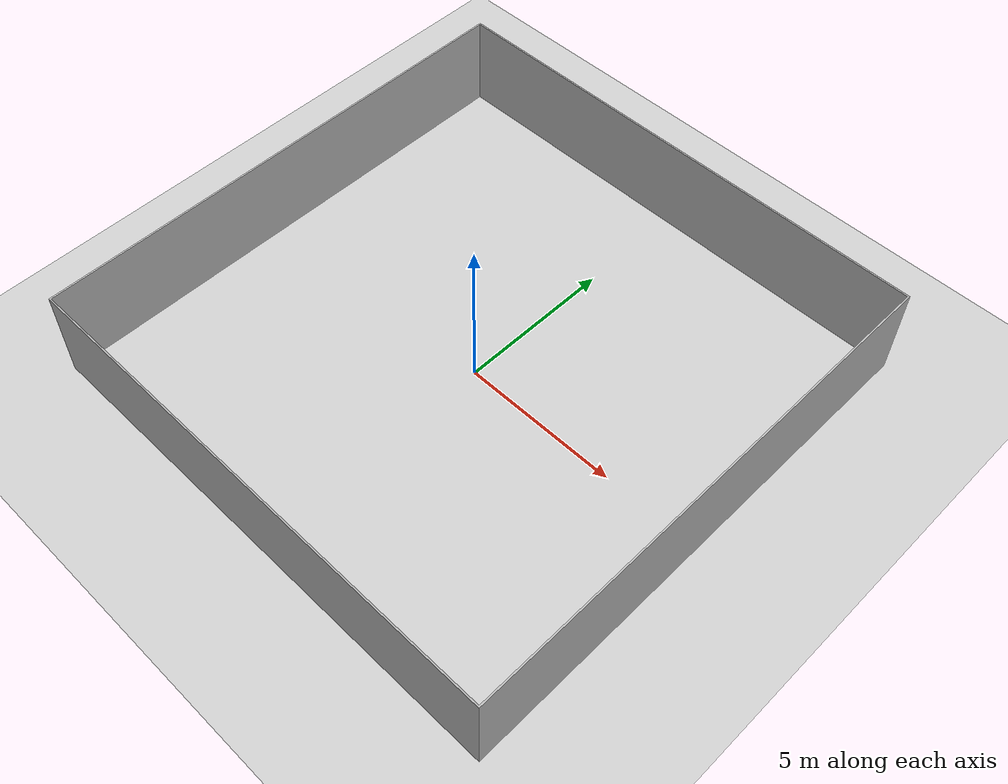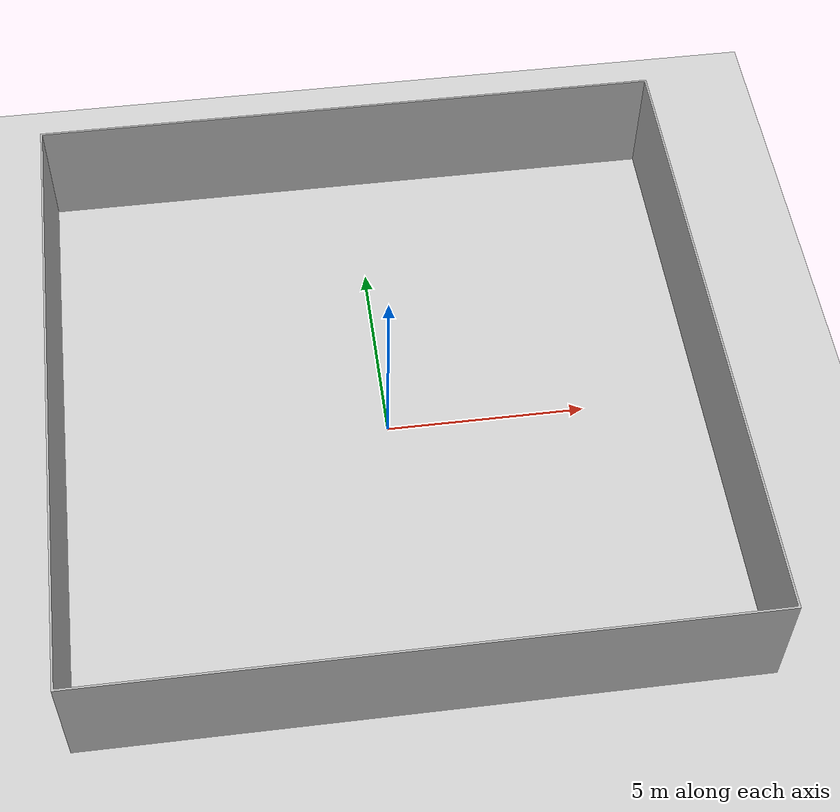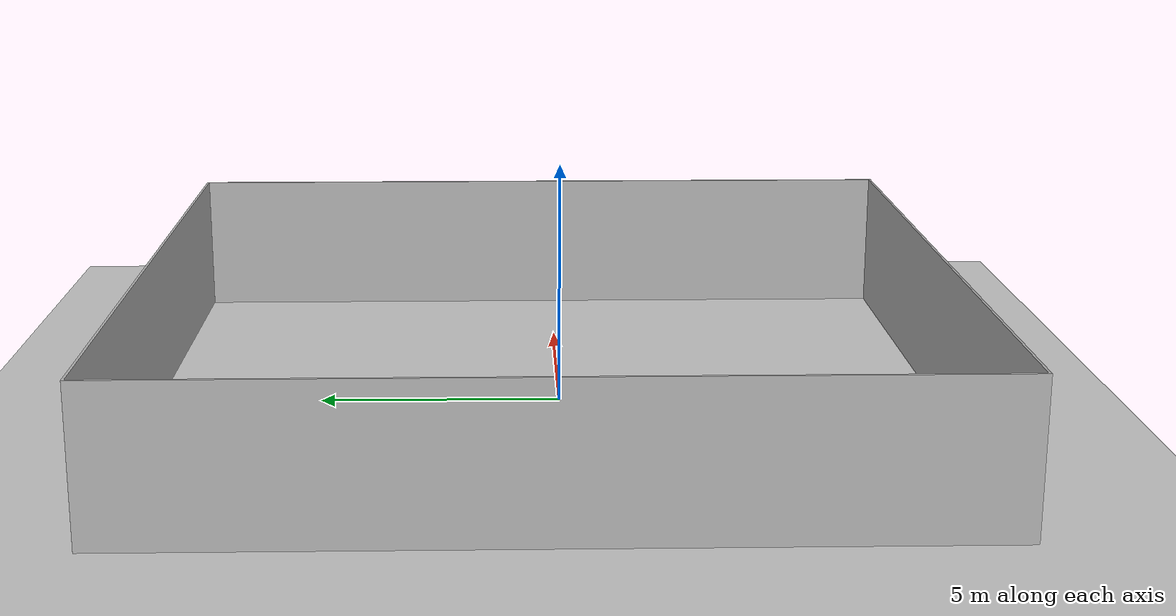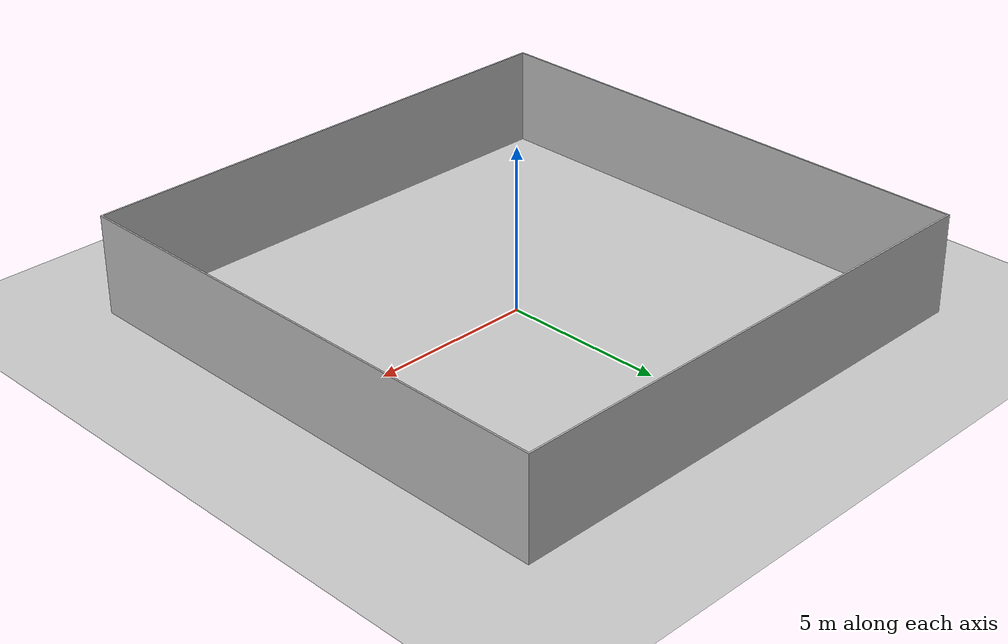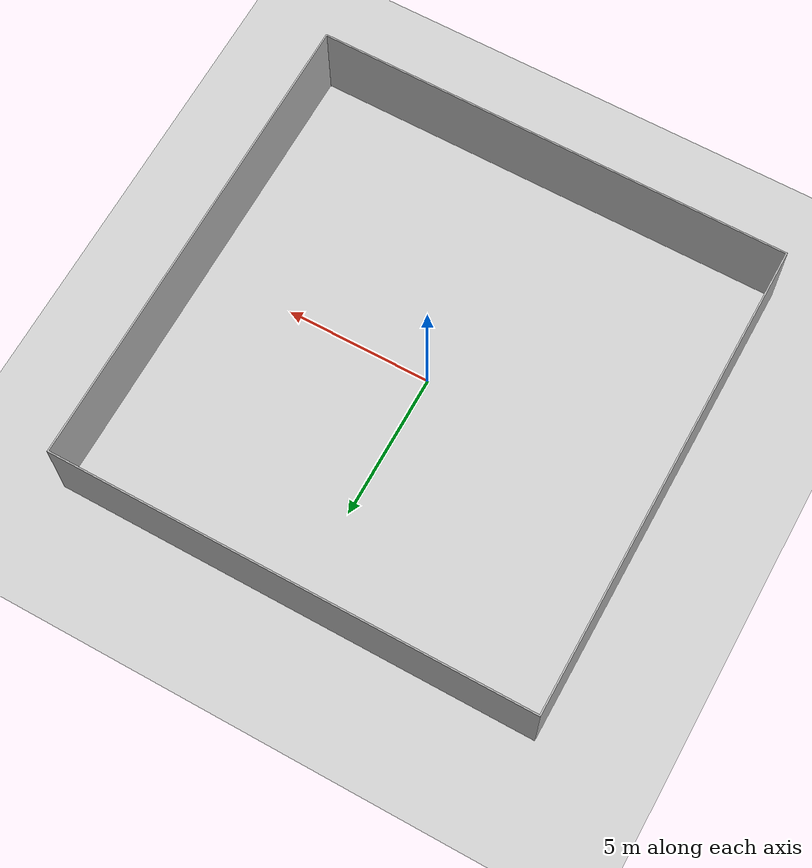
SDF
<?xml version="1.0"?>
<sdf version="1.4">
  <world name="default">
    <include>
      <uri>model://ground_plane</uri>
    </include>
    <include>
      <uri>model://sun</uri>
    </include>
    <model name="empty">
      <pose>-1.0 0.4 0  0 0 0</pose>
      <static>true</static>
      <link name="body">
        <visual name="visual">
          <geometry>
            <mesh><uri>model://empty.stl</uri><scale>35 35 35</scale></mesh>
          </geometry>
        </visual>
        <collision name="visual">
          <geometry>
            <mesh><uri>model://empty.stl</uri><scale>35 35 35</scale></mesh>
          </geometry>
        </collision>
      </link>
    </model>
  </world>
</sdf>
